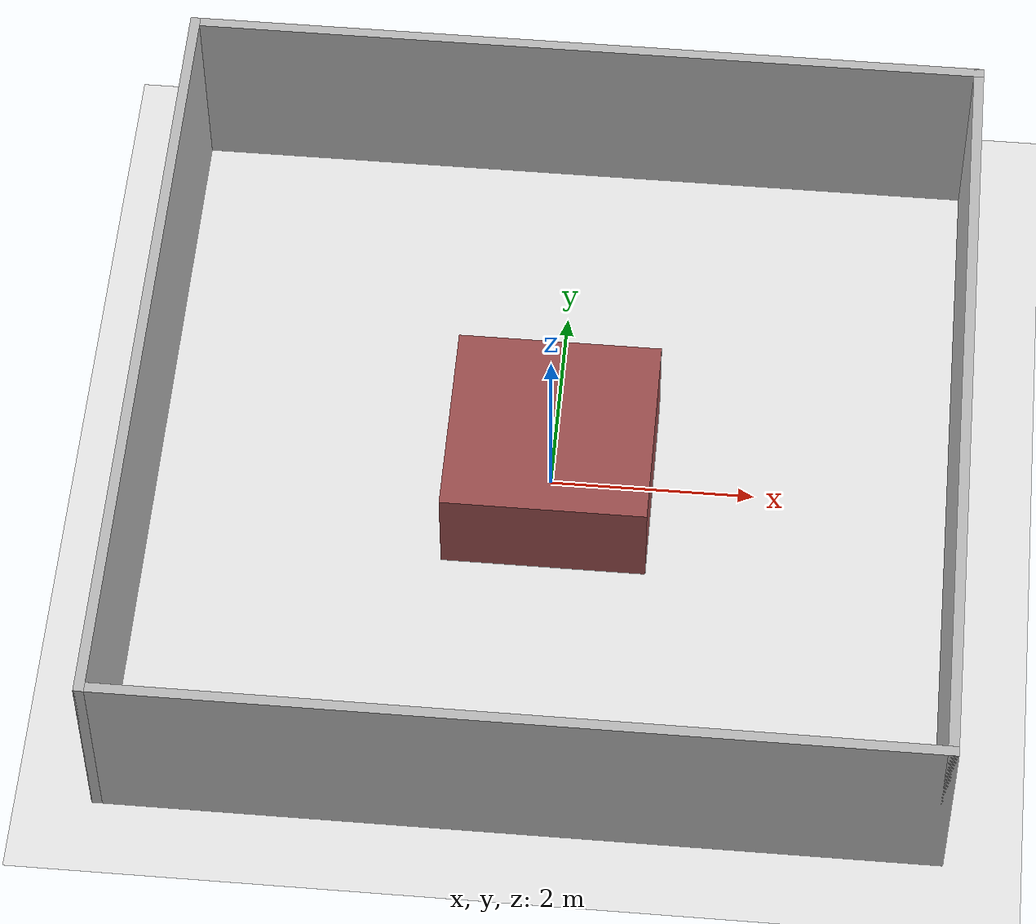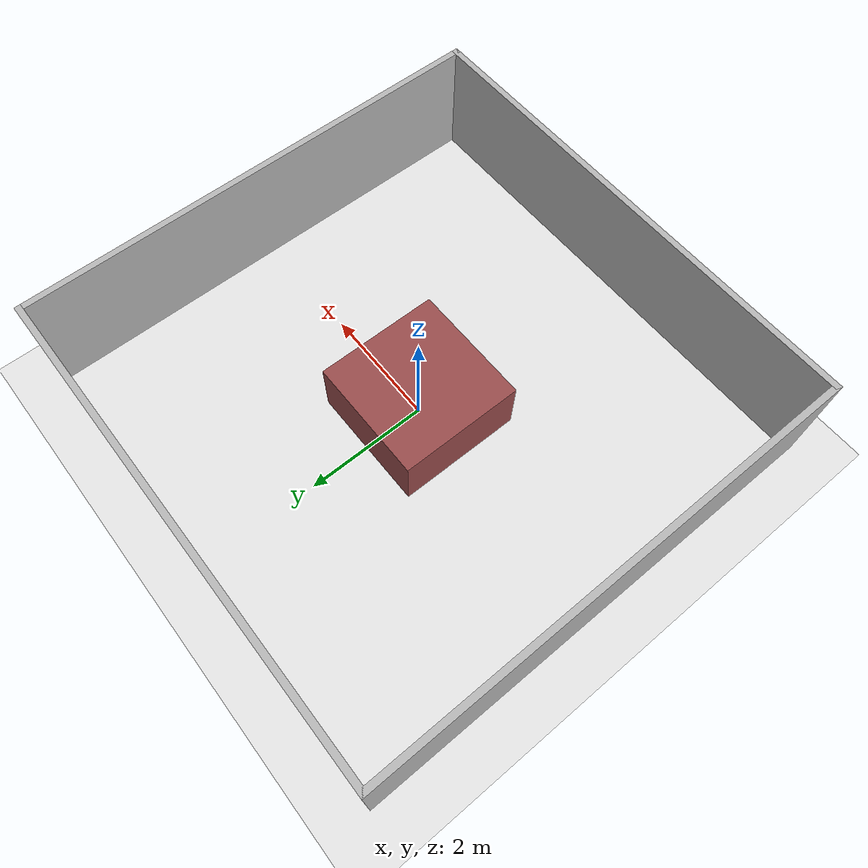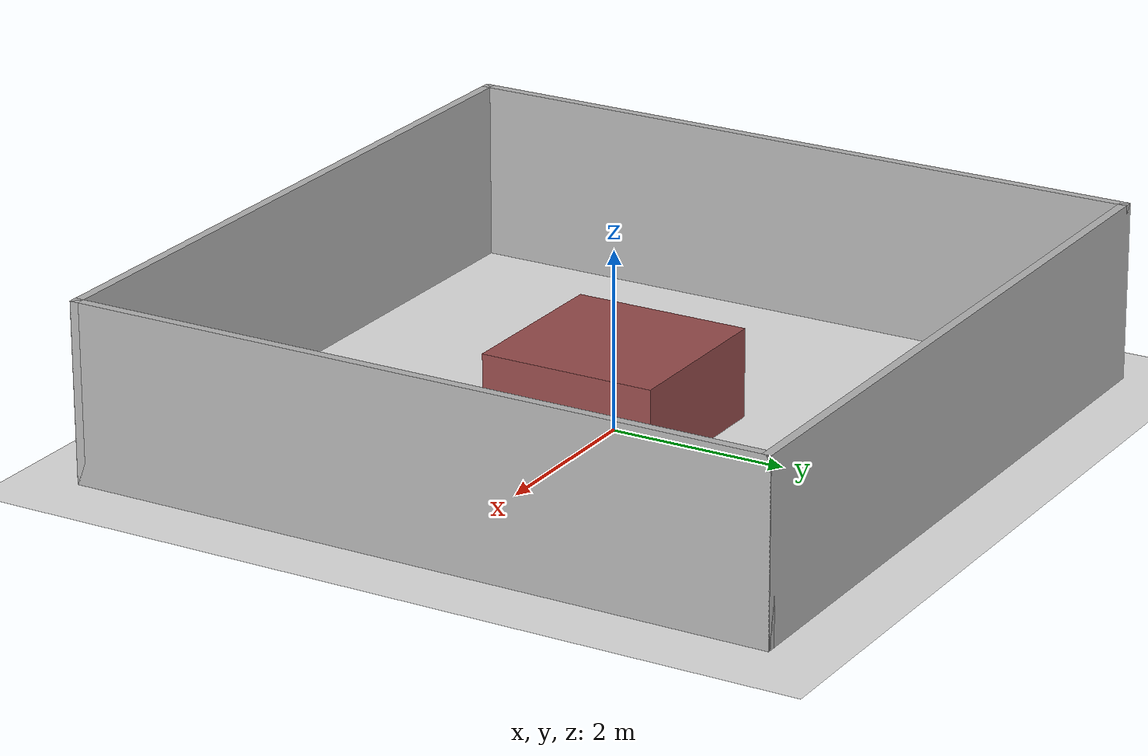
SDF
<?xml version="1.0" ?>
<sdf version="1.9">
  <world name="indoor_sim">
    <physics name="1ms" type="ignored">
      <max_step_size>0.001</max_step_size>
      <real_time_factor>1.0</real_time_factor>
    </physics>

    <plugin filename="gz-sim-physics-system" name="gz::sim::systems::Physics"/>
    <plugin filename="gz-sim-user-commands-system" name="gz::sim::systems::UserCommands"/>
    <plugin filename="gz-sim-scene-broadcaster-system" name="gz::sim::systems::SceneBroadcaster"/>
    <plugin filename="gz-sim-sensors-system" name="gz::sim::systems::Sensors">
      <render_engine>ogre2</render_engine>
    </plugin>

    <light type="directional" name="sun">
      <cast_shadows>true</cast_shadows>
      <pose>0 0 10 0 0.6 0</pose>
      <diffuse>0.9 0.9 0.9 1</diffuse>
      <specular>0.3 0.3 0.3 1</specular>
      <direction>-0.5 0.1 -1</direction>
    </light>

    <model name="ground_plane">
      <static>true</static>
      <link name="link">
        <collision name="collision">
          <geometry><plane><normal>0 0 1</normal><size>100 100</size></plane></geometry>
        </collision>
        <visual name="visual">
          <geometry><plane><normal>0 0 1</normal><size>100 100</size></plane></geometry>
          <material>
            <ambient>0.9 0.9 0.9 1</ambient>
            <diffuse>0.9 0.9 0.9 1</diffuse>
          </material>
        </visual>
      </link>
    </model>

    <!-- Walls aligned with maps/sim_lab.yaml (8 m x 8 m room, origin at center). -->
    <model name="wall_north">
      <static>true</static>
      <pose>0 3.95 1 0 0 0</pose>
      <link name="link">
        <collision name="collision"><geometry><box><size>8.0 0.1 2.0</size></box></geometry></collision>
        <visual name="visual"><geometry><box><size>8.0 0.1 2.0</size></box></geometry></visual>
      </link>
    </model>
    <model name="wall_south">
      <static>true</static>
      <pose>0 -3.95 1 0 0 0</pose>
      <link name="link">
        <collision name="collision"><geometry><box><size>8.0 0.1 2.0</size></box></geometry></collision>
        <visual name="visual"><geometry><box><size>8.0 0.1 2.0</size></box></geometry></visual>
      </link>
    </model>
    <model name="wall_east">
      <static>true</static>
      <pose>3.95 0 1 0 0 0</pose>
      <link name="link">
        <collision name="collision"><geometry><box><size>0.1 8.0 2.0</size></box></geometry></collision>
        <visual name="visual"><geometry><box><size>0.1 8.0 2.0</size></box></geometry></visual>
      </link>
    </model>
    <model name="wall_west">
      <static>true</static>
      <pose>-3.95 0 1 0 0 0</pose>
      <link name="link">
        <collision name="collision"><geometry><box><size>0.1 8.0 2.0</size></box></geometry></collision>
        <visual name="visual"><geometry><box><size>0.1 8.0 2.0</size></box></geometry></visual>
      </link>
    </model>
    <model name="obstacle_center">
      <static>true</static>
      <pose>0 0 0.5 0 0 0</pose>
      <link name="link">
        <collision name="collision"><geometry><box><size>2.0 2.0 1.0</size></box></geometry></collision>
        <visual name="visual">
          <geometry><box><size>2.0 2.0 1.0</size></box></geometry>
          <material><ambient>0.6 0.3 0.3 1</ambient></material>
        </visual>
      </link>
    </model>
  </world>
</sdf>
